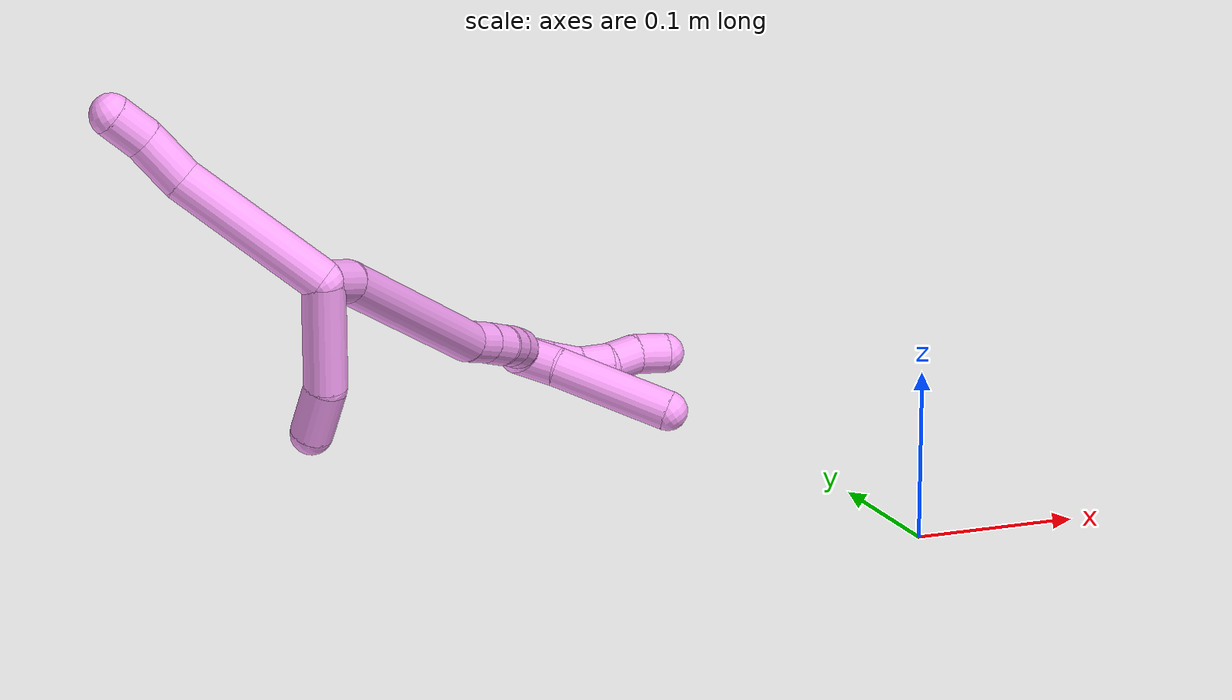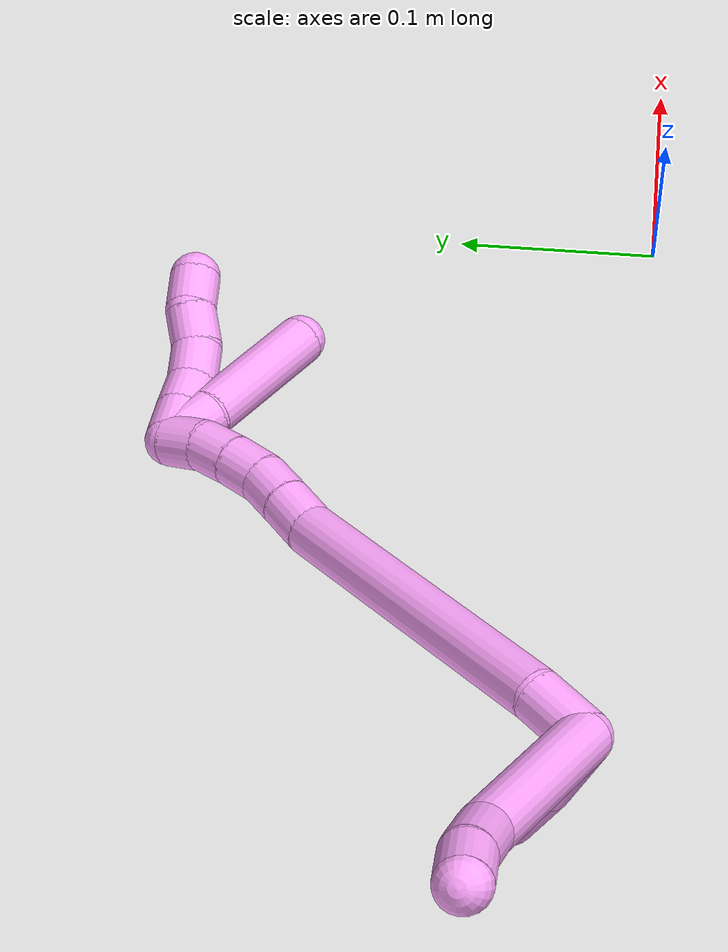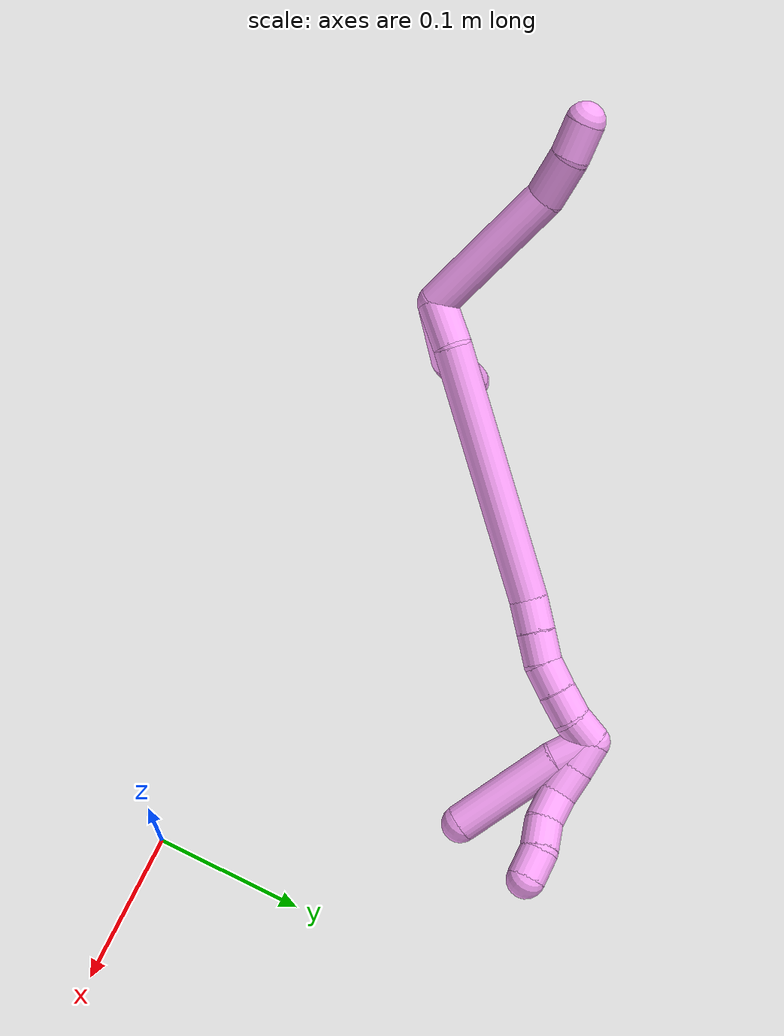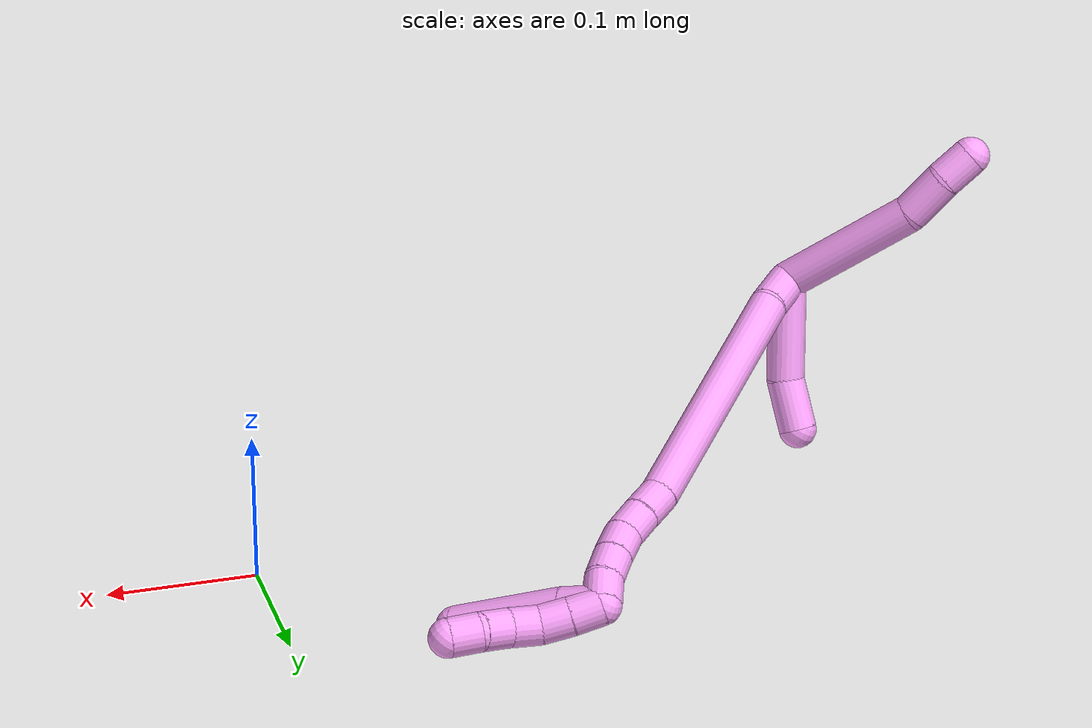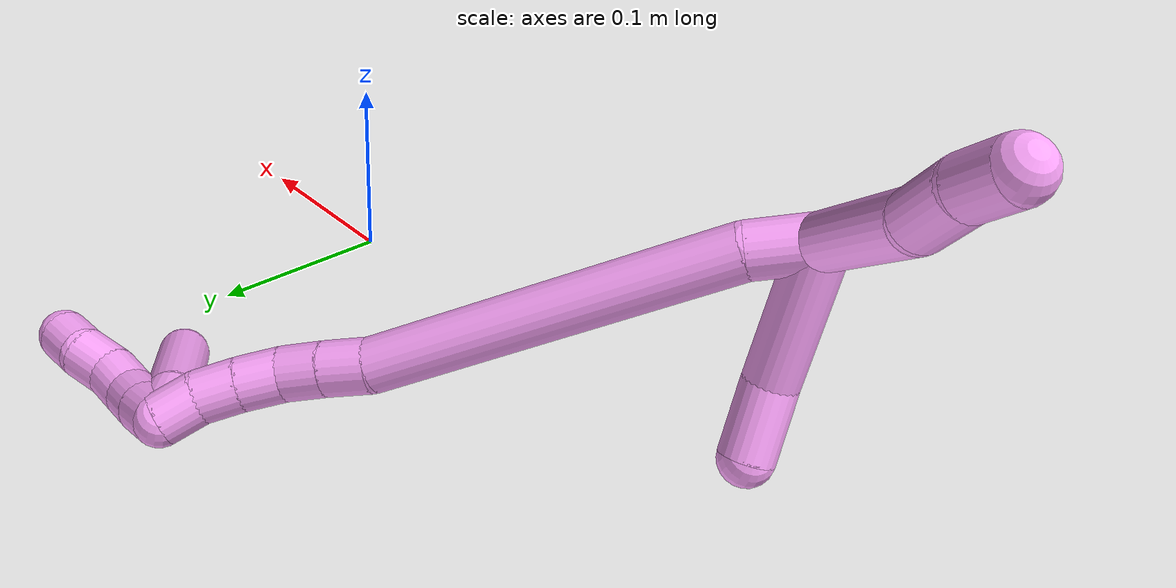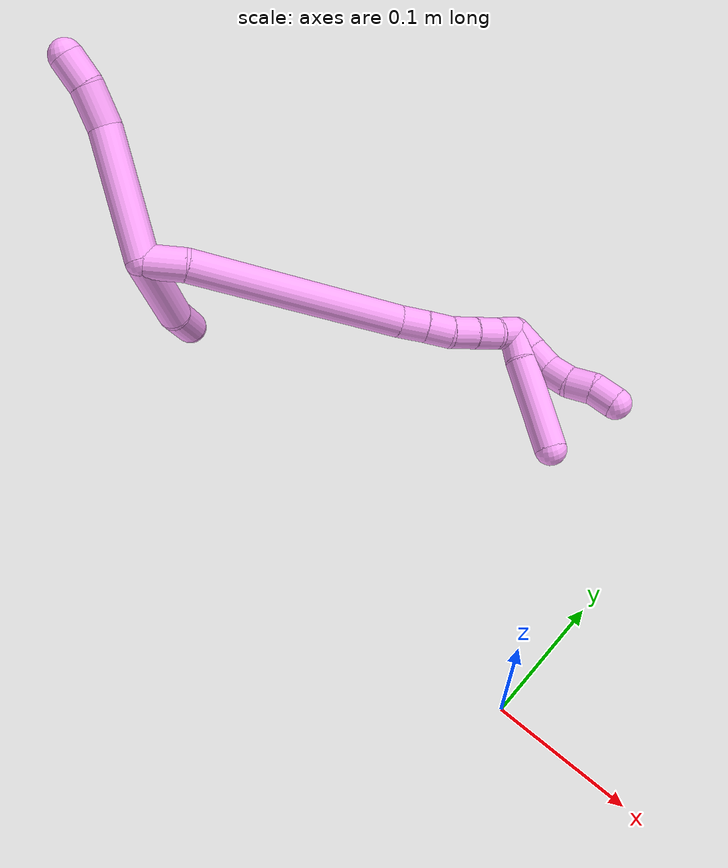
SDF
<sdf version="1.7">
 <world name="default">
  <model name="4">
   <static>0</static>
   <link name="4">
    <collision name="collision-cylinder-e_1_2_8">
     <pose>-0.010953 0.015785 0.044122 -0.343575 -0.229618 0.040009</pose>
     <geometry><cylinder><radius>0.0125</radius><length>0.096247</length></cylinder></geometry>
     <surface>
      <friction><ode><mu>1.16</mu><mu2>1.16</mu2><slip1>0</slip1><slip2>0</slip2></ode></friction>
      <contact><ode><kp>1e+06</kp><kd>1</kd><max_vel>0</max_vel><min_depth>0.001</min_depth></ode></contact>
     </surface>
    </collision>
    <visual name="visual-cylinder-e_1_2_8">
     <pose>-0.010953 0.015785 0.044122 -0.343575 -0.229618 0.040009</pose>
     <geometry><cylinder><radius>0.0125</radius><length>0.096247</length></cylinder></geometry>
     <material><ambient>1 0.65098 0.996078 1</ambient></material>
    </visual>
    <collision name="collision-cylinder-e_2_8_9">
     <pose>-0.024135 0.032466 0.103374 -0.059109 -0.145977 0.004323</pose>
     <geometry><cylinder><radius>0.0125</radius><length>0.030639</length></cylinder></geometry>
     <surface>
      <friction><ode><mu>1.16</mu><mu2>1.16</mu2><slip1>0</slip1><slip2>0</slip2></ode></friction>
      <contact><ode><kp>1e+06</kp><kd>1</kd><max_vel>0</max_vel><min_depth>0.001</min_depth></ode></contact>
     </surface>
    </collision>
    <visual name="visual-cylinder-e_2_8_9">
     <pose>-0.024135 0.032466 0.103374 -0.059109 -0.145977 0.004323</pose>
     <geometry><cylinder><radius>0.0125</radius><length>0.030639</length></cylinder></geometry>
     <material><ambient>1 0.65098 0.996078 1</ambient></material>
    </visual>
    <collision name="collision-cylinder-e_3_9_6">
     <pose>-0.030357 0.03298 0.129342 0.035111 -0.352864 -0.00626</pose>
     <geometry><cylinder><radius>0.0125</radius><length>0.023114</length></cylinder></geometry>
     <surface>
      <friction><ode><mu>1.16</mu><mu2>1.16</mu2><slip1>0</slip1><slip2>0</slip2></ode></friction>
      <contact><ode><kp>1e+06</kp><kd>1</kd><max_vel>0</max_vel><min_depth>0.001</min_depth></ode></contact>
     </surface>
    </collision>
    <visual name="visual-cylinder-e_3_9_6">
     <pose>-0.030357 0.03298 0.129342 0.035111 -0.352864 -0.00626</pose>
     <geometry><cylinder><radius>0.0125</radius><length>0.023114</length></cylinder></geometry>
     <material><ambient>1 0.65098 0.996078 1</ambient></material>
    </visual>
    <collision name="collision-cylinder-e_1_2_10">
     <pose>-0.0111 0.015228 -0.027043 -2.62874 -0.343484 1.16887</pose>
     <geometry><cylinder><radius>0.0125</radius><length>0.065923</length></cylinder></geometry>
     <surface>
      <friction><ode><mu>1.16</mu><mu2>1.16</mu2><slip1>0</slip1><slip2>0</slip2></ode></friction>
      <contact><ode><kp>1e+06</kp><kd>1</kd><max_vel>0</max_vel><min_depth>0.001</min_depth></ode></contact>
     </surface>
    </collision>
    <visual name="visual-cylinder-e_1_2_10">
     <pose>-0.0111 0.015228 -0.027043 -2.62874 -0.343484 1.16887</pose>
     <geometry><cylinder><radius>0.0125</radius><length>0.065923</length></cylinder></geometry>
     <material><ambient>1 0.65098 0.996078 1</ambient></material>
    </visual>
    <collision name="collision-cylinder-e_2_10_5">
     <pose>-0.029104 0.041977 -0.064572 -2.3092 -0.417161 0.893161</pose>
     <geometry><cylinder><radius>0.0125</radius><length>0.034077</length></cylinder></geometry>
     <surface>
      <friction><ode><mu>1.16</mu><mu2>1.16</mu2><slip1>0</slip1><slip2>0</slip2></ode></friction>
      <contact><ode><kp>1e+06</kp><kd>1</kd><max_vel>0</max_vel><min_depth>0.001</min_depth></ode></contact>
     </surface>
    </collision>
    <visual name="visual-cylinder-e_2_10_5">
     <pose>-0.029104 0.041977 -0.064572 -2.3092 -0.417161 0.893161</pose>
     <geometry><cylinder><radius>0.0125</radius><length>0.034077</length></cylinder></geometry>
     <material><ambient>1 0.65098 0.996078 1</ambient></material>
    </visual>
    <collision name="collision-cylinder-e_1_2_11">
     <pose>0.009981 0.009377 -0.006169 -2.1527 0.726846 -1.22874</pose>
     <geometry><cylinder><radius>0.0125</radius><length>0.030041</length></cylinder></geometry>
     <surface>
      <friction><ode><mu>1.16</mu><mu2>1.16</mu2><slip1>0</slip1><slip2>0</slip2></ode></friction>
      <contact><ode><kp>1e+06</kp><kd>1</kd><max_vel>0</max_vel><min_depth>0.001</min_depth></ode></contact>
     </surface>
    </collision>
    <visual name="visual-cylinder-e_1_2_11">
     <pose>0.009981 0.009377 -0.006169 -2.1527 0.726846 -1.22874</pose>
     <geometry><cylinder><radius>0.0125</radius><length>0.030041</length></cylinder></geometry>
     <material><ambient>1 0.65098 0.996078 1</ambient></material>
    </visual>
    <collision name="collision-cylinder-e_2_11_12">
     <pose>0.063258 0.071864 -0.060954 -2.31205 0.541382 -1.12471</pose>
     <geometry><cylinder><radius>0.0125</radius><length>0.168031</length></cylinder></geometry>
     <surface>
      <friction><ode><mu>1.16</mu><mu2>1.16</mu2><slip1>0</slip1><slip2>0</slip2></ode></friction>
      <contact><ode><kp>1e+06</kp><kd>1</kd><max_vel>0</max_vel><min_depth>0.001</min_depth></ode></contact>
     </surface>
    </collision>
    <visual name="visual-cylinder-e_2_11_12">
     <pose>0.063258 0.071864 -0.060954 -2.31205 0.541382 -1.12471</pose>
     <geometry><cylinder><radius>0.0125</radius><length>0.168031</length></cylinder></geometry>
     <material><ambient>1 0.65098 0.996078 1</ambient></material>
    </visual>
    <collision name="collision-cylinder-e_3_12_13">
     <pose>0.113849 0.130801 -0.114912 -2.31268 0.745371 -1.45303</pose>
     <geometry><cylinder><radius>0.0125</radius><length>0.021516</length></cylinder></geometry>
     <surface>
      <friction><ode><mu>1.16</mu><mu2>1.16</mu2><slip1>0</slip1><slip2>0</slip2></ode></friction>
      <contact><ode><kp>1e+06</kp><kd>1</kd><max_vel>0</max_vel><min_depth>0.001</min_depth></ode></contact>
     </surface>
    </collision>
    <visual name="visual-cylinder-e_3_12_13">
     <pose>0.113849 0.130801 -0.114912 -2.31268 0.745371 -1.45303</pose>
     <geometry><cylinder><radius>0.0125</radius><length>0.021516</length></cylinder></geometry>
     <material><ambient>1 0.65098 0.996078 1</ambient></material>
    </visual>
    <collision name="collision-cylinder-e_4_13_14">
     <pose>0.127728 0.142197 -0.125649 -2.3405 0.703925 -1.42892</pose>
     <geometry><cylinder><radius>0.0125</radius><length>0.020341</length></cylinder></geometry>
     <surface>
      <friction><ode><mu>1.16</mu><mu2>1.16</mu2><slip1>0</slip1><slip2>0</slip2></ode></friction>
      <contact><ode><kp>1e+06</kp><kd>1</kd><max_vel>0</max_vel><min_depth>0.001</min_depth></ode></contact>
     </surface>
    </collision>
    <visual name="visual-cylinder-e_4_13_14">
     <pose>0.127728 0.142197 -0.125649 -2.3405 0.703925 -1.42892</pose>
     <geometry><cylinder><radius>0.0125</radius><length>0.020341</length></cylinder></geometry>
     <material><ambient>1 0.65098 0.996078 1</ambient></material>
    </visual>
    <collision name="collision-cylinder-e_5_14_15">
     <pose>0.139948 0.155045 -0.135016 -2.0702 0.59696 -0.956391</pose>
     <geometry><cylinder><radius>0.0125</radius><length>0.020055</length></cylinder></geometry>
     <surface>
      <friction><ode><mu>1.16</mu><mu2>1.16</mu2><slip1>0</slip1><slip2>0</slip2></ode></friction>
      <contact><ode><kp>1e+06</kp><kd>1</kd><max_vel>0</max_vel><min_depth>0.001</min_depth></ode></contact>
     </surface>
    </collision>
    <visual name="visual-cylinder-e_5_14_15">
     <pose>0.139948 0.155045 -0.135016 -2.0702 0.59696 -0.956391</pose>
     <geometry><cylinder><radius>0.0125</radius><length>0.020055</length></cylinder></geometry>
     <material><ambient>1 0.65098 0.996078 1</ambient></material>
    </visual>
    <collision name="collision-cylinder-e_6_15_16">
     <pose>0.150637 0.169938 -0.143069 -2.06287 0.529246 -0.850219</pose>
     <geometry><cylinder><radius>0.0125</radius><length>0.020014</length></cylinder></geometry>
     <surface>
      <friction><ode><mu>1.16</mu><mu2>1.16</mu2><slip1>0</slip1><slip2>0</slip2></ode></friction>
      <contact><ode><kp>1e+06</kp><kd>1</kd><max_vel>0</max_vel><min_depth>0.001</min_depth></ode></contact>
     </surface>
    </collision>
    <visual name="visual-cylinder-e_6_15_16">
     <pose>0.150637 0.169938 -0.143069 -2.06287 0.529246 -0.850219</pose>
     <geometry><cylinder><radius>0.0125</radius><length>0.020014</length></cylinder></geometry>
     <material><ambient>1 0.65098 0.996078 1</ambient></material>
    </visual>
    <collision name="collision-cylinder-e_7_16_1">
     <pose>0.158596 0.186355 -0.150901 -1.97354 0.294902 -0.442105</pose>
     <geometry><cylinder><radius>0.0125</radius><length>0.020001</length></cylinder></geometry>
     <surface>
      <friction><ode><mu>1.16</mu><mu2>1.16</mu2><slip1>0</slip1><slip2>0</slip2></ode></friction>
      <contact><ode><kp>1e+06</kp><kd>1</kd><max_vel>0</max_vel><min_depth>0.001</min_depth></ode></contact>
     </surface>
    </collision>
    <visual name="visual-cylinder-e_7_16_1">
     <pose>0.158596 0.186355 -0.150901 -1.97354 0.294902 -0.442105</pose>
     <geometry><cylinder><radius>0.0125</radius><length>0.020001</length></cylinder></geometry>
     <material><ambient>1 0.65098 0.996078 1</ambient></material>
    </visual>
    <collision name="collision-cylinder-e_1_1_17">
     <pose>0.167896 0.193521 -0.162164 2.92705 0.693636 2.56246</pose>
     <geometry><cylinder><radius>0.0125</radius><length>0.02</length></cylinder></geometry>
     <surface>
      <friction><ode><mu>1.16</mu><mu2>1.16</mu2><slip1>0</slip1><slip2>0</slip2></ode></friction>
      <contact><ode><kp>1e+06</kp><kd>1</kd><max_vel>0</max_vel><min_depth>0.001</min_depth></ode></contact>
     </surface>
    </collision>
    <visual name="visual-cylinder-e_1_1_17">
     <pose>0.167896 0.193521 -0.162164 2.92705 0.693636 2.56246</pose>
     <geometry><cylinder><radius>0.0125</radius><length>0.02</length></cylinder></geometry>
     <material><ambient>1 0.65098 0.996078 1</ambient></material>
    </visual>
    <collision name="collision-cylinder-e_2_17_18">
     <pose>0.180895 0.189704 -0.176861 2.84691 0.721609 2.39208</pose>
     <geometry><cylinder><radius>0.0125</radius><length>0.02</length></cylinder></geometry>
     <surface>
      <friction><ode><mu>1.16</mu><mu2>1.16</mu2><slip1>0</slip1><slip2>0</slip2></ode></friction>
      <contact><ode><kp>1e+06</kp><kd>1</kd><max_vel>0</max_vel><min_depth>0.001</min_depth></ode></contact>
     </surface>
    </collision>
    <visual name="visual-cylinder-e_2_17_18">
     <pose>0.180895 0.189704 -0.176861 2.84691 0.721609 2.39208</pose>
     <geometry><cylinder><radius>0.0125</radius><length>0.02</length></cylinder></geometry>
     <material><ambient>1 0.65098 0.996078 1</ambient></material>
    </visual>
    <collision name="collision-cylinder-e_3_18_19">
     <pose>0.196076 0.185758 -0.188878 2.79153 1.03031 2.53608</pose>
     <geometry><cylinder><radius>0.0125</radius><length>0.02</length></cylinder></geometry>
     <surface>
      <friction><ode><mu>1.16</mu><mu2>1.16</mu2><slip1>0</slip1><slip2>0</slip2></ode></friction>
      <contact><ode><kp>1e+06</kp><kd>1</kd><max_vel>0</max_vel><min_depth>0.001</min_depth></ode></contact>
     </surface>
    </collision>
    <visual name="visual-cylinder-e_3_18_19">
     <pose>0.196076 0.185758 -0.188878 2.79153 1.03031 2.53608</pose>
     <geometry><cylinder><radius>0.0125</radius><length>0.02</length></cylinder></geometry>
     <material><ambient>1 0.65098 0.996078 1</ambient></material>
    </visual>
    <collision name="collision-cylinder-e_4_19_20">
     <pose>0.214058 0.184644 -0.197039 -2.94848 1.22492 -2.8676</pose>
     <geometry><cylinder><radius>0.0125</radius><length>0.02</length></cylinder></geometry>
     <surface>
      <friction><ode><mu>1.16</mu><mu2>1.16</mu2><slip1>0</slip1><slip2>0</slip2></ode></friction>
      <contact><ode><kp>1e+06</kp><kd>1</kd><max_vel>0</max_vel><min_depth>0.001</min_depth></ode></contact>
     </surface>
    </collision>
    <visual name="visual-cylinder-e_4_19_20">
     <pose>0.214058 0.184644 -0.197039 -2.94848 1.22492 -2.8676</pose>
     <geometry><cylinder><radius>0.0125</radius><length>0.02</length></cylinder></geometry>
     <material><ambient>1 0.65098 0.996078 1</ambient></material>
    </visual>
    <collision name="collision-cylinder-e_5_20_4">
     <pose>0.23165 0.183984 -0.205961 2.91145 0.958666 2.70396</pose>
     <geometry><cylinder><radius>0.0125</radius><length>0.02</length></cylinder></geometry>
     <surface>
      <friction><ode><mu>1.16</mu><mu2>1.16</mu2><slip1>0</slip1><slip2>0</slip2></ode></friction>
      <contact><ode><kp>1e+06</kp><kd>1</kd><max_vel>0</max_vel><min_depth>0.001</min_depth></ode></contact>
     </surface>
    </collision>
    <visual name="visual-cylinder-e_5_20_4">
     <pose>0.23165 0.183984 -0.205961 2.91145 0.958666 2.70396</pose>
     <geometry><cylinder><radius>0.0125</radius><length>0.02</length></cylinder></geometry>
     <material><ambient>1 0.65098 0.996078 1</ambient></material>
    </visual>
    <collision name="collision-cylinder-e_1_1_21">
     <pose>0.166197 0.186913 -0.163493 2.39107 0.370341 0.887733</pose>
     <geometry><cylinder><radius>0.0125</radius><length>0.025938</length></cylinder></geometry>
     <surface>
      <friction><ode><mu>1.16</mu><mu2>1.16</mu2><slip1>0</slip1><slip2>0</slip2></ode></friction>
      <contact><ode><kp>1e+06</kp><kd>1</kd><max_vel>0</max_vel><min_depth>0.001</min_depth></ode></contact>
     </surface>
    </collision>
    <visual name="visual-cylinder-e_1_1_21">
     <pose>0.166197 0.186913 -0.163493 2.39107 0.370341 0.887733</pose>
     <geometry><cylinder><radius>0.0125</radius><length>0.025938</length></cylinder></geometry>
     <material><ambient>1 0.65098 0.996078 1</ambient></material>
    </visual>
    <collision name="collision-cylinder-e_2_21_3">
     <pose>0.18519 0.159824 -0.200825 2.55726 0.396464 1.17764</pose>
     <geometry><cylinder><radius>0.0125</radius><length>0.074062</length></cylinder></geometry>
     <surface>
      <friction><ode><mu>1.16</mu><mu2>1.16</mu2><slip1>0</slip1><slip2>0</slip2></ode></friction>
      <contact><ode><kp>1e+06</kp><kd>1</kd><max_vel>0</max_vel><min_depth>0.001</min_depth></ode></contact>
     </surface>
    </collision>
    <visual name="visual-cylinder-e_2_21_3">
     <pose>0.18519 0.159824 -0.200825 2.55726 0.396464 1.17764</pose>
     <geometry><cylinder><radius>0.0125</radius><length>0.074062</length></cylinder></geometry>
     <material><ambient>1 0.65098 0.996078 1</ambient></material>
    </visual>
    <collision name="collision-sphere-3">
     <pose>0.19949 0.140981 -0.229317 0 -0 0</pose>
     <geometry><sphere><radius>0.0125</radius></sphere></geometry>
     <surface>
      <friction><ode><mu>1.16</mu><mu2>1.16</mu2><slip1>0</slip1><slip2>0</slip2></ode></friction>
      <contact><ode><kp>1e+06</kp><kd>1</kd><max_vel>0</max_vel><min_depth>0.001</min_depth></ode></contact>
     </surface>
    </collision>
    <visual name="visual-sphere-3">
     <pose>0.19949 0.140981 -0.229317 0 -0 0</pose>
     <geometry><sphere><radius>0.0125</radius></sphere></geometry>
     <material><ambient>1 0.65098 0.996078 1</ambient></material>
    </visual>
    <collision name="collision-sphere-21">
     <pose>0.17089 0.178667 -0.172334 0 -0 0</pose>
     <geometry><sphere><radius>0.0125</radius></sphere></geometry>
     <surface>
      <friction><ode><mu>1.16</mu><mu2>1.16</mu2><slip1>0</slip1><slip2>0</slip2></ode></friction>
      <contact><ode><kp>1e+06</kp><kd>1</kd><max_vel>0</max_vel><min_depth>0.001</min_depth></ode></contact>
     </surface>
    </collision>
    <visual name="visual-sphere-21">
     <pose>0.17089 0.178667 -0.172334 0 -0 0</pose>
     <geometry><sphere><radius>0.0125</radius></sphere></geometry>
     <material><ambient>1 0.65098 0.996078 1</ambient></material>
    </visual>
    <collision name="collision-sphere-4">
     <pose>0.239834 0.182673 -0.211555 0 -0 0</pose>
     <geometry><sphere><radius>0.0125</radius></sphere></geometry>
     <surface>
      <friction><ode><mu>1.16</mu><mu2>1.16</mu2><slip1>0</slip1><slip2>0</slip2></ode></friction>
      <contact><ode><kp>1e+06</kp><kd>1</kd><max_vel>0</max_vel><min_depth>0.001</min_depth></ode></contact>
     </surface>
    </collision>
    <visual name="visual-sphere-4">
     <pose>0.239834 0.182673 -0.211555 0 -0 0</pose>
     <geometry><sphere><radius>0.0125</radius></sphere></geometry>
     <material><ambient>1 0.65098 0.996078 1</ambient></material>
    </visual>
    <collision name="collision-sphere-20">
     <pose>0.223466 0.185295 -0.200366 0 -0 0</pose>
     <geometry><sphere><radius>0.0125</radius></sphere></geometry>
     <surface>
      <friction><ode><mu>1.16</mu><mu2>1.16</mu2><slip1>0</slip1><slip2>0</slip2></ode></friction>
      <contact><ode><kp>1e+06</kp><kd>1</kd><max_vel>0</max_vel><min_depth>0.001</min_depth></ode></contact>
     </surface>
    </collision>
    <visual name="visual-sphere-20">
     <pose>0.223466 0.185295 -0.200366 0 -0 0</pose>
     <geometry><sphere><radius>0.0125</radius></sphere></geometry>
     <material><ambient>1 0.65098 0.996078 1</ambient></material>
    </visual>
    <collision name="collision-sphere-5">
     <pose>-0.036008 0.053497 -0.075057 0 -0 0</pose>
     <geometry><sphere><radius>0.0125</radius></sphere></geometry>
     <surface>
      <friction><ode><mu>1.16</mu><mu2>1.16</mu2><slip1>0</slip1><slip2>0</slip2></ode></friction>
      <contact><ode><kp>1e+06</kp><kd>1</kd><max_vel>0</max_vel><min_depth>0.001</min_depth></ode></contact>
     </surface>
    </collision>
    <visual name="visual-sphere-5">
     <pose>-0.036008 0.053497 -0.075057 0 -0 0</pose>
     <geometry><sphere><radius>0.0125</radius></sphere></geometry>
     <material><ambient>1 0.65098 0.996078 1</ambient></material>
    </visual>
    <collision name="collision-sphere-10">
     <pose>-0.022201 0.030457 -0.054087 0 -0 0</pose>
     <geometry><sphere><radius>0.0125</radius></sphere></geometry>
     <surface>
      <friction><ode><mu>1.16</mu><mu2>1.16</mu2><slip1>0</slip1><slip2>0</slip2></ode></friction>
      <contact><ode><kp>1e+06</kp><kd>1</kd><max_vel>0</max_vel><min_depth>0.001</min_depth></ode></contact>
     </surface>
    </collision>
    <visual name="visual-sphere-10">
     <pose>-0.022201 0.030457 -0.054087 0 -0 0</pose>
     <geometry><sphere><radius>0.0125</radius></sphere></geometry>
     <material><ambient>1 0.65098 0.996078 1</ambient></material>
    </visual>
    <collision name="collision-sphere-6">
     <pose>-0.034351 0.0326 0.14018 0 -0 0</pose>
     <geometry><sphere><radius>0.0125</radius></sphere></geometry>
     <surface>
      <friction><ode><mu>1.16</mu><mu2>1.16</mu2><slip1>0</slip1><slip2>0</slip2></ode></friction>
      <contact><ode><kp>1e+06</kp><kd>1</kd><max_vel>0</max_vel><min_depth>0.001</min_depth></ode></contact>
     </surface>
    </collision>
    <visual name="visual-sphere-6">
     <pose>-0.034351 0.0326 0.14018 0 -0 0</pose>
     <geometry><sphere><radius>0.0125</radius></sphere></geometry>
     <material><ambient>1 0.65098 0.996078 1</ambient></material>
    </visual>
    <collision name="collision-sphere-9">
     <pose>-0.026363 0.033361 0.118504 0 -0 0</pose>
     <geometry><sphere><radius>0.0125</radius></sphere></geometry>
     <surface>
      <friction><ode><mu>1.16</mu><mu2>1.16</mu2><slip1>0</slip1><slip2>0</slip2></ode></friction>
      <contact><ode><kp>1e+06</kp><kd>1</kd><max_vel>0</max_vel><min_depth>0.001</min_depth></ode></contact>
     </surface>
    </collision>
    <visual name="visual-sphere-9">
     <pose>-0.026363 0.033361 0.118504 0 -0 0</pose>
     <geometry><sphere><radius>0.0125</radius></sphere></geometry>
     <material><ambient>1 0.65098 0.996078 1</ambient></material>
    </visual>
    <collision name="collision-sphere-2">
     <geometry><sphere><radius>0.0125</radius></sphere></geometry>
     <surface>
      <friction><ode><mu>1.16</mu><mu2>1.16</mu2><slip1>0</slip1><slip2>0</slip2></ode></friction>
      <contact><ode><kp>1e+06</kp><kd>1</kd><max_vel>0</max_vel><min_depth>0.001</min_depth></ode></contact>
     </surface>
    </collision>
    <visual name="visual-sphere-2">
     <geometry><sphere><radius>0.0125</radius></sphere></geometry>
     <material><ambient>1 0.65098 0.996078 1</ambient></material>
    </visual>
    <collision name="collision-sphere-19">
     <pose>0.20465 0.183994 -0.193712 0 -0 0</pose>
     <geometry><sphere><radius>0.0125</radius></sphere></geometry>
     <surface>
      <friction><ode><mu>1.16</mu><mu2>1.16</mu2><slip1>0</slip1><slip2>0</slip2></ode></friction>
      <contact><ode><kp>1e+06</kp><kd>1</kd><max_vel>0</max_vel><min_depth>0.001</min_depth></ode></contact>
     </surface>
    </collision>
    <visual name="visual-sphere-19">
     <pose>0.20465 0.183994 -0.193712 0 -0 0</pose>
     <geometry><sphere><radius>0.0125</radius></sphere></geometry>
     <material><ambient>1 0.65098 0.996078 1</ambient></material>
    </visual>
    <collision name="collision-sphere-8">
     <pose>-0.021906 0.03157 0.088244 0 -0 0</pose>
     <geometry><sphere><radius>0.0125</radius></sphere></geometry>
     <surface>
      <friction><ode><mu>1.16</mu><mu2>1.16</mu2><slip1>0</slip1><slip2>0</slip2></ode></friction>
      <contact><ode><kp>1e+06</kp><kd>1</kd><max_vel>0</max_vel><min_depth>0.001</min_depth></ode></contact>
     </surface>
    </collision>
    <visual name="visual-sphere-8">
     <pose>-0.021906 0.03157 0.088244 0 -0 0</pose>
     <geometry><sphere><radius>0.0125</radius></sphere></geometry>
     <material><ambient>1 0.65098 0.996078 1</ambient></material>
    </visual>
    <collision name="collision-sphere-11">
     <pose>0.019963 0.018754 -0.012338 0 -0 0</pose>
     <geometry><sphere><radius>0.0125</radius></sphere></geometry>
     <surface>
      <friction><ode><mu>1.16</mu><mu2>1.16</mu2><slip1>0</slip1><slip2>0</slip2></ode></friction>
      <contact><ode><kp>1e+06</kp><kd>1</kd><max_vel>0</max_vel><min_depth>0.001</min_depth></ode></contact>
     </surface>
    </collision>
    <visual name="visual-sphere-11">
     <pose>0.019963 0.018754 -0.012338 0 -0 0</pose>
     <geometry><sphere><radius>0.0125</radius></sphere></geometry>
     <material><ambient>1 0.65098 0.996078 1</ambient></material>
    </visual>
    <collision name="collision-sphere-12">
     <pose>0.106553 0.124973 -0.109571 0 -0 0</pose>
     <geometry><sphere><radius>0.0125</radius></sphere></geometry>
     <surface>
      <friction><ode><mu>1.16</mu><mu2>1.16</mu2><slip1>0</slip1><slip2>0</slip2></ode></friction>
      <contact><ode><kp>1e+06</kp><kd>1</kd><max_vel>0</max_vel><min_depth>0.001</min_depth></ode></contact>
     </surface>
    </collision>
    <visual name="visual-sphere-12">
     <pose>0.106553 0.124973 -0.109571 0 -0 0</pose>
     <geometry><sphere><radius>0.0125</radius></sphere></geometry>
     <material><ambient>1 0.65098 0.996078 1</ambient></material>
    </visual>
    <collision name="collision-sphere-13">
     <pose>0.121146 0.136629 -0.120253 0 -0 0</pose>
     <geometry><sphere><radius>0.0125</radius></sphere></geometry>
     <surface>
      <friction><ode><mu>1.16</mu><mu2>1.16</mu2><slip1>0</slip1><slip2>0</slip2></ode></friction>
      <contact><ode><kp>1e+06</kp><kd>1</kd><max_vel>0</max_vel><min_depth>0.001</min_depth></ode></contact>
     </surface>
    </collision>
    <visual name="visual-sphere-13">
     <pose>0.121146 0.136629 -0.120253 0 -0 0</pose>
     <geometry><sphere><radius>0.0125</radius></sphere></geometry>
     <material><ambient>1 0.65098 0.996078 1</ambient></material>
    </visual>
    <collision name="collision-sphere-14">
     <pose>0.134311 0.147764 -0.131045 0 -0 0</pose>
     <geometry><sphere><radius>0.0125</radius></sphere></geometry>
     <surface>
      <friction><ode><mu>1.16</mu><mu2>1.16</mu2><slip1>0</slip1><slip2>0</slip2></ode></friction>
      <contact><ode><kp>1e+06</kp><kd>1</kd><max_vel>0</max_vel><min_depth>0.001</min_depth></ode></contact>
     </surface>
    </collision>
    <visual name="visual-sphere-14">
     <pose>0.134311 0.147764 -0.131045 0 -0 0</pose>
     <geometry><sphere><radius>0.0125</radius></sphere></geometry>
     <material><ambient>1 0.65098 0.996078 1</ambient></material>
    </visual>
    <collision name="collision-sphere-15">
     <pose>0.145584 0.162325 -0.138988 0 -0 0</pose>
     <geometry><sphere><radius>0.0125</radius></sphere></geometry>
     <surface>
      <friction><ode><mu>1.16</mu><mu2>1.16</mu2><slip1>0</slip1><slip2>0</slip2></ode></friction>
      <contact><ode><kp>1e+06</kp><kd>1</kd><max_vel>0</max_vel><min_depth>0.001</min_depth></ode></contact>
     </surface>
    </collision>
    <visual name="visual-sphere-15">
     <pose>0.145584 0.162325 -0.138988 0 -0 0</pose>
     <geometry><sphere><radius>0.0125</radius></sphere></geometry>
     <material><ambient>1 0.65098 0.996078 1</ambient></material>
    </visual>
    <collision name="collision-sphere-16">
     <pose>0.155689 0.177551 -0.14715 0 -0 0</pose>
     <geometry><sphere><radius>0.0125</radius></sphere></geometry>
     <surface>
      <friction><ode><mu>1.16</mu><mu2>1.16</mu2><slip1>0</slip1><slip2>0</slip2></ode></friction>
      <contact><ode><kp>1e+06</kp><kd>1</kd><max_vel>0</max_vel><min_depth>0.001</min_depth></ode></contact>
     </surface>
    </collision>
    <visual name="visual-sphere-16">
     <pose>0.155689 0.177551 -0.14715 0 -0 0</pose>
     <geometry><sphere><radius>0.0125</radius></sphere></geometry>
     <material><ambient>1 0.65098 0.996078 1</ambient></material>
    </visual>
    <collision name="collision-sphere-1">
     <pose>0.161503 0.195158 -0.154651 0 -0 0</pose>
     <geometry><sphere><radius>0.0125</radius></sphere></geometry>
     <surface>
      <friction><ode><mu>1.16</mu><mu2>1.16</mu2><slip1>0</slip1><slip2>0</slip2></ode></friction>
      <contact><ode><kp>1e+06</kp><kd>1</kd><max_vel>0</max_vel><min_depth>0.001</min_depth></ode></contact>
     </surface>
    </collision>
    <visual name="visual-sphere-1">
     <pose>0.161503 0.195158 -0.154651 0 -0 0</pose>
     <geometry><sphere><radius>0.0125</radius></sphere></geometry>
     <material><ambient>1 0.65098 0.996078 1</ambient></material>
    </visual>
    <collision name="collision-sphere-18">
     <pose>0.187501 0.187523 -0.184045 0 -0 0</pose>
     <geometry><sphere><radius>0.0125</radius></sphere></geometry>
     <surface>
      <friction><ode><mu>1.16</mu><mu2>1.16</mu2><slip1>0</slip1><slip2>0</slip2></ode></friction>
      <contact><ode><kp>1e+06</kp><kd>1</kd><max_vel>0</max_vel><min_depth>0.001</min_depth></ode></contact>
     </surface>
    </collision>
    <visual name="visual-sphere-18">
     <pose>0.187501 0.187523 -0.184045 0 -0 0</pose>
     <geometry><sphere><radius>0.0125</radius></sphere></geometry>
     <material><ambient>1 0.65098 0.996078 1</ambient></material>
    </visual>
    <collision name="collision-sphere-17">
     <pose>0.174289 0.191884 -0.169677 0 -0 0</pose>
     <geometry><sphere><radius>0.0125</radius></sphere></geometry>
     <surface>
      <friction><ode><mu>1.16</mu><mu2>1.16</mu2><slip1>0</slip1><slip2>0</slip2></ode></friction>
      <contact><ode><kp>1e+06</kp><kd>1</kd><max_vel>0</max_vel><min_depth>0.001</min_depth></ode></contact>
     </surface>
    </collision>
    <visual name="visual-sphere-17">
     <pose>0.174289 0.191884 -0.169677 0 -0 0</pose>
     <geometry><sphere><radius>0.0125</radius></sphere></geometry>
     <material><ambient>1 0.65098 0.996078 1</ambient></material>
    </visual>
    <inertial>
     <pose>0.078119 0.0926 -0.07381 0 -0 0</pose>
     <mass>0.75</mass>
     <inertia>
      <ixx>2e-05</ixx>
      <ixy>0</ixy>
      <ixz>0</ixz>
      <iyy>-0.000139</iyy>
      <iyz>0</iyz>
      <izz>-0.000503</izz>
     </inertia>
    </inertial>
   </link>
   <pose>-0.355286 0.025544 0.179693 -0.311872 -0.48494 0.300369</pose>
  </model>
 </world>
</sdf>
